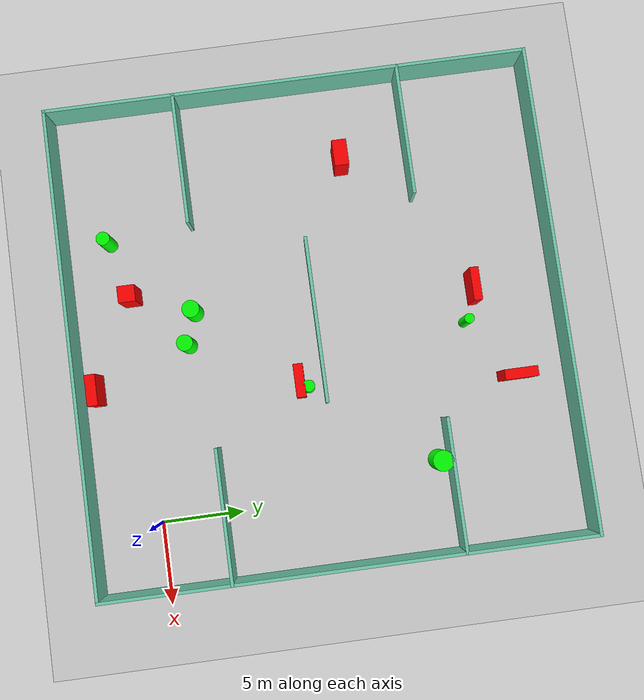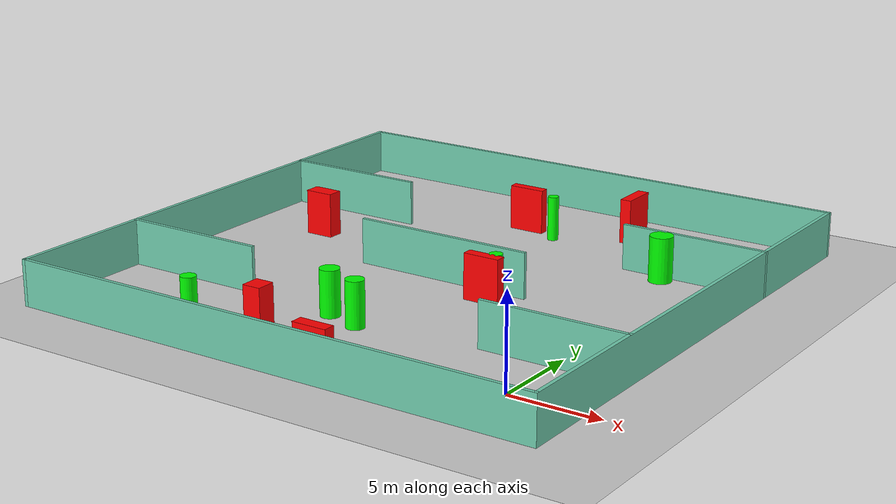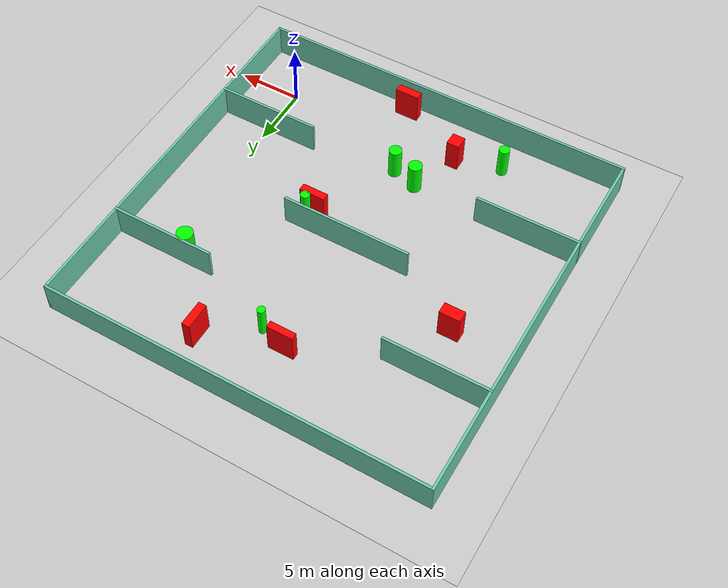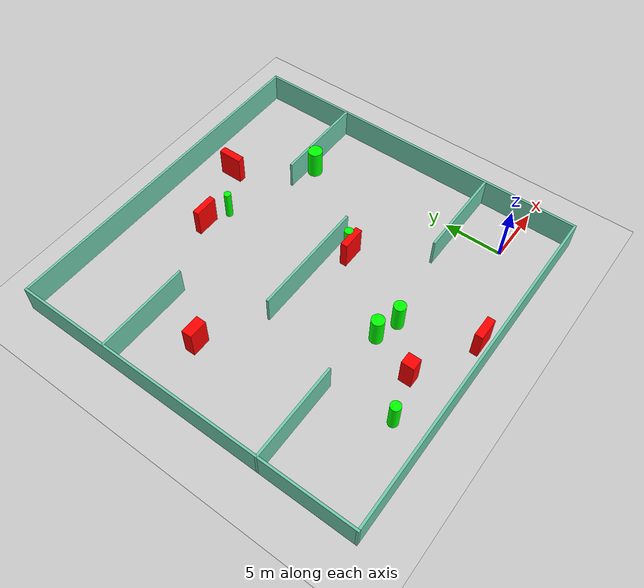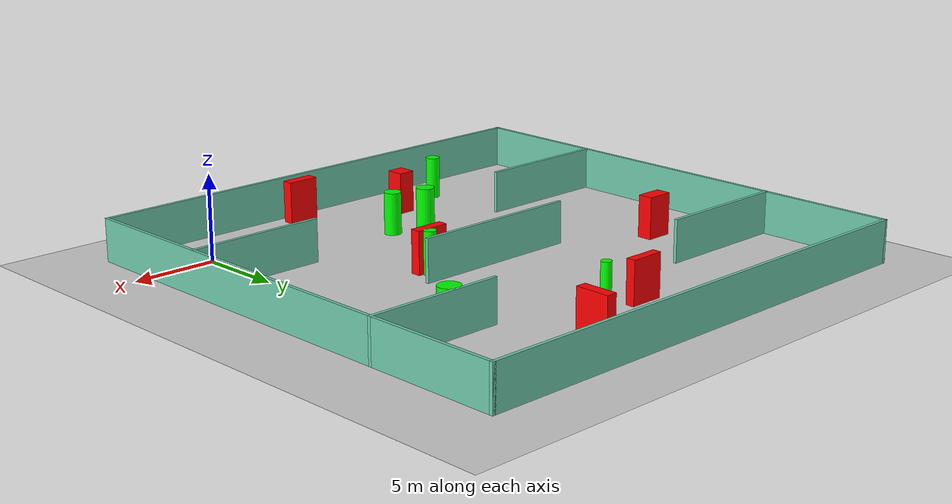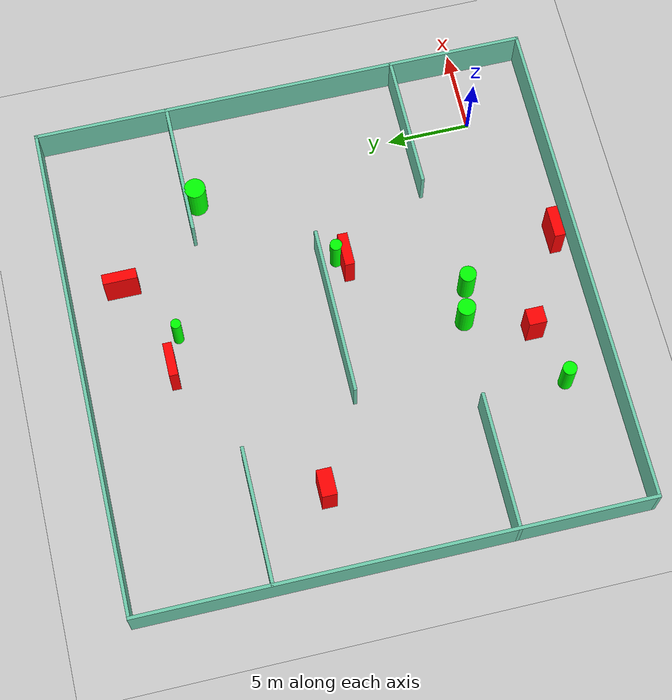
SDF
<sdf version="1.7">
 <world name="default">
  <light name="sun" type="directional">
   <pose>0 0 10 0 -0 0</pose>
   <diffuse>0.8 0.8 0.8 1</diffuse>
   <specular>0.2 0.2 0.2 1</specular>
   <attenuation>
    <range>1000</range>
    <constant>0.9</constant>
    <linear>0.01</linear>
    <quadratic>0.001</quadratic>
   </attenuation>
   <direction>-0.5 0.1 -0.9</direction>
   <spot><inner_angle>0</inner_angle><outer_angle>0</outer_angle><falloff>0</falloff></spot>
  </light>
  <model name="ground_plane">
   <static>1</static>
   <link name="link">
    <collision name="collision">
     <geometry><plane><normal>0 0 1</normal><size>100 100</size></plane></geometry>
     <surface>
      <contact><collide_bitmask>65535</collide_bitmask></contact>
      <friction><ode><mu>100</mu><mu2>50</mu2></ode></friction>
     </surface>
    </collision>
    <visual name="visual">
     <cast_shadows>0</cast_shadows>
     <geometry><plane><normal>0 0 1</normal><size>100 100</size></plane></geometry>
     <material>
      <script><uri>file://media/materials/scripts/gazebo.material</uri><name>Gazebo/Grey</name></script>
     </material>
    </visual>
   </link>
  </model>
  <gravity>0 0 -9.8</gravity>
  <magnetic_field>6e-06 2.3e-05 -4.2e-05</magnetic_field>
  <atmosphere type="adiabatic"/>
  <physics type="ode">
   <max_step_size>0.001</max_step_size>
   <real_time_factor>1</real_time_factor>
   <real_time_update_rate>1000</real_time_update_rate>
  </physics>
  <scene><ambient>0.4 0.4 0.4 1</ambient><background>0.7 0.7 0.7 1</background><shadows>1</shadows></scene>
  <spherical_coordinates>
   <surface_model>EARTH_WGS84</surface_model>
   <latitude_deg>0</latitude_deg>
   <longitude_deg>0</longitude_deg>
   <elevation>0</elevation>
   <heading_deg>0</heading_deg>
  </spherical_coordinates>
  <model name="my_base_walls">
   <link name="Wall_10">
    <collision name="Wall_10_Collision">
     <geometry><box><size>8.2 0.2 2.5</size></box></geometry>
     <pose>0 0 1.25 0 -0 0</pose>
    </collision>
    <visual name="Wall_10_Visual">
     <pose>0 0 1.25 0 -0 0</pose>
     <geometry><box><size>8.2 0.2 2.5</size></box></geometry>
     <material>
      <script><uri>file://media/materials/scripts/gazebo.material</uri><name>Gazebo/Grey</name></script>
      <ambient>0.435294 0.796078 0.67451 1</ambient>
     </material>
     <meta><layer>0</layer></meta>
    </visual>
    <pose>-11 -7 0 0 -0 0</pose>
   </link>
   <link name="Wall_12">
    <collision name="Wall_12_Collision">
     <geometry><box><size>8.2 0.2 2.5</size></box></geometry>
     <pose>0 0 1.25 0 -0 0</pose>
    </collision>
    <visual name="Wall_12_Visual">
     <pose>0 0 1.25 0 -0 0</pose>
     <geometry><box><size>8.2 0.2 2.5</size></box></geometry>
     <material>
      <script><uri>file://media/materials/scripts/gazebo.material</uri><name>Gazebo/Grey</name></script>
      <ambient>0.435294 0.796078 0.67451 1</ambient>
     </material>
     <meta><layer>0</layer></meta>
    </visual>
    <pose>-11 7 0 0 -0 0</pose>
   </link>
   <link name="Wall_14">
    <collision name="Wall_14_Collision">
     <geometry><box><size>8.2 0.2 2.5</size></box></geometry>
     <pose>0 0 1.25 0 -0 0</pose>
    </collision>
    <visual name="Wall_14_Visual">
     <pose>0 0 1.25 0 -0 0</pose>
     <geometry><box><size>8.2 0.2 2.5</size></box></geometry>
     <material>
      <script><uri>file://media/materials/scripts/gazebo.material</uri><name>Gazebo/Grey</name></script>
      <ambient>0.435294 0.796078 0.67451 1</ambient>
     </material>
     <meta><layer>0</layer></meta>
    </visual>
    <pose>11 7 0 0 -0 3.14159</pose>
   </link>
   <link name="Wall_16">
    <collision name="Wall_16_Collision">
     <geometry><box><size>10.2 0.2 2.5</size></box></geometry>
     <pose>0 0 1.25 0 -0 0</pose>
    </collision>
    <visual name="Wall_16_Visual">
     <pose>0 0 1.25 0 -0 0</pose>
     <geometry><box><size>10.2 0.2 2.5</size></box></geometry>
     <material>
      <script><uri>file://media/materials/scripts/gazebo.material</uri><name>Gazebo/Grey</name></script>
      <ambient>0.435294 0.796078 0.67451 1</ambient>
     </material>
     <meta><layer>0</layer></meta>
    </visual>
    <pose>0 0 0 0 -0 3.14159</pose>
   </link>
   <link name="Wall_2">
    <collision name="Wall_2_Collision">
     <geometry><box><size>30.2 0.2 2.5</size></box></geometry>
     <pose>0 0 1.25 0 -0 0</pose>
    </collision>
    <visual name="Wall_2_Visual">
     <pose>0 0 1.25 0 -0 0</pose>
     <geometry><box><size>30.2 0.2 2.5</size></box></geometry>
     <material>
      <script><uri>file://media/materials/scripts/gazebo.material</uri><name>Gazebo/Grey</name></script>
      <ambient>0.435294 0.796078 0.67451 1</ambient>
     </material>
     <meta><layer>0</layer></meta>
    </visual>
    <pose>0 -15 0 0 -0 3.14159</pose>
   </link>
   <link name="Wall_3">
    <collision name="Wall_3_Collision">
     <geometry><box><size>30.2 0.2 2.5</size></box></geometry>
     <pose>0 0 1.25 0 -0 0</pose>
    </collision>
    <visual name="Wall_3_Visual">
     <pose>0 0 1.25 0 -0 0</pose>
     <geometry><box><size>30.2 0.2 2.5</size></box></geometry>
     <material>
      <script><uri>file://media/materials/scripts/gazebo.material</uri><name>Gazebo/Grey</name></script>
      <ambient>0.435294 0.796078 0.67451 1</ambient>
     </material>
     <meta><layer>0</layer></meta>
    </visual>
    <pose>-15 0 0 0 -0 1.5708</pose>
   </link>
   <link name="Wall_4">
    <collision name="Wall_4_Collision">
     <geometry><box><size>30.2 0.2 2.5</size></box></geometry>
     <pose>0 0 1.25 0 -0 0</pose>
    </collision>
    <visual name="Wall_4_Visual">
     <pose>0 0 1.25 0 -0 0</pose>
     <geometry><box><size>30.2 0.2 2.5</size></box></geometry>
     <material>
      <script><uri>file://media/materials/scripts/gazebo.material</uri><name>Gazebo/Grey</name></script>
      <ambient>0.435294 0.796078 0.67451 1</ambient>
     </material>
     <meta><layer>0</layer></meta>
    </visual>
    <pose>0 15 0 0 -0 0</pose>
   </link>
   <link name="Wall_6">
    <collision name="Wall_6_Collision">
     <geometry><box><size>30.2 0.2 2.5</size></box></geometry>
     <pose>0 0 1.25 0 -0 0</pose>
    </collision>
    <visual name="Wall_6_Visual">
     <pose>0 0 1.25 0 -0 0</pose>
     <geometry><box><size>30.2 0.2 2.5</size></box></geometry>
     <material>
      <script><uri>file://media/materials/scripts/gazebo.material</uri><name>Gazebo/Grey</name></script>
      <ambient>0.435294 0.796078 0.67451 1</ambient>
     </material>
     <meta><layer>0</layer></meta>
    </visual>
    <pose>15 0 0 0 -0 1.5708</pose>
   </link>
   <link name="Wall_8">
    <collision name="Wall_8_Collision">
     <geometry><box><size>8.2 0.2 2.5</size></box></geometry>
     <pose>0 0 1.25 0 -0 0</pose>
    </collision>
    <visual name="Wall_8_Visual">
     <pose>0 0 1.25 0 -0 0</pose>
     <geometry><box><size>8.2 0.2 2.5</size></box></geometry>
     <material>
      <script><uri>file://media/materials/scripts/gazebo.material</uri><name>Gazebo/Grey</name></script>
      <ambient>0.435294 0.796078 0.67451 1</ambient>
     </material>
     <meta><layer>0</layer></meta>
    </visual>
    <pose>11 -7 0 0 -0 3.14159</pose>
   </link>
   <static>1</static>
   <pose>-11 11 0 0 -0 0</pose>
  </model>
  <model name="cylinder1">
   <static>1</static>
   <link name="link">
    <inertial>
     <mass>1</mass>
     <inertia><ixx>0.5</ixx><ixy>0</ixy><ixz>0</ixz><iyy>0.5</iyy><iyz>0</iyz><izz>1</izz></inertia>
    </inertial>
    <collision name="collision">
     <geometry><cylinder><radius>0.5343109914587598</radius><length>2.5</length></cylinder></geometry>
    </collision>
    <visual name="visual">
     <geometry><cylinder><radius>0.5343109914587598</radius><length>2.5</length></cylinder></geometry>
     <material>
      <ambient>0 1 0 1</ambient>
      <diffuse>0 1 0 1</diffuse>
      <specular>0.1 0.1 0.1 1</specular>
      <emissive>0 0 0 0</emissive>
     </material>
    </visual>
   </link>
   <pose>-12.609252311248678 3.535556625982551 1.25 0 0 0</pose>
  </model>
  <model name="cylinder2">
   <static>1</static>
   <link name="link">
    <inertial>
     <mass>1</mass>
     <inertia><ixx>0.5</ixx><ixy>0</ixy><ixz>0</ixz><iyy>0.5</iyy><iyz>0</iyz><izz>1</izz></inertia>
    </inertial>
    <collision name="collision">
     <geometry><cylinder><radius>0.4187109910850981</radius><length>2.5</length></cylinder></geometry>
    </collision>
    <visual name="visual">
     <geometry><cylinder><radius>0.4187109910850981</radius><length>2.5</length></cylinder></geometry>
     <material>
      <ambient>0 1 0 1</ambient>
      <diffuse>0 1 0 1</diffuse>
      <specular>0.1 0.1 0.1 1</specular>
      <emissive>0 0 0 0</emissive>
     </material>
    </visual>
   </link>
   <pose>-17.60323029818937 -1.2425187940395848 1.25 0 0 0</pose>
  </model>
  <model name="cylinder3">
   <static>1</static>
   <link name="link">
    <inertial>
     <mass>1</mass>
     <inertia><ixx>0.5</ixx><ixy>0</ixy><ixz>0</ixz><iyy>0.5</iyy><iyz>0</iyz><izz>1</izz></inertia>
    </inertial>
    <collision name="collision">
     <geometry><cylinder><radius>0.3634912796701186</radius><length>2.5</length></cylinder></geometry>
    </collision>
    <visual name="visual">
     <geometry><cylinder><radius>0.3634912796701186</radius><length>2.5</length></cylinder></geometry>
     <material>
      <ambient>0 1 0 1</ambient>
      <diffuse>0 1 0 1</diffuse>
      <specular>0.1 0.1 0.1 1</specular>
      <emissive>0 0 0 0</emissive>
     </material>
    </visual>
   </link>
   <pose>-7.0394944363432295 10.019304759757873 1.25 0 0 0</pose>
  </model>
  <model name="cylinder4">
   <static>1</static>
   <link name="link">
    <inertial>
     <mass>1</mass>
     <inertia><ixx>0.5</ixx><ixy>0</ixy><ixz>0</ixz><iyy>0.5</iyy><iyz>0</iyz><izz>1</izz></inertia>
    </inertial>
    <collision name="collision">
     <geometry><cylinder><radius>0.6349679491088678</radius><length>2.5</length></cylinder></geometry>
    </collision>
    <visual name="visual">
     <geometry><cylinder><radius>0.6349679491088678</radius><length>2.5</length></cylinder></geometry>
     <material>
      <ambient>0 1 0 1</ambient>
      <diffuse>0 1 0 1</diffuse>
      <specular>0.1 0.1 0.1 1</specular>
      <emissive>0 0 0 0</emissive>
     </material>
    </visual>
   </link>
   <pose>-1.5499291776114852 17.37466572517337 1.25 0 0 0</pose>
  </model>
  <model name="cylinder5">
   <static>1</static>
   <link name="link">
    <inertial>
     <mass>1</mass>
     <inertia><ixx>0.5</ixx><ixy>0</ixy><ixz>0</ixz><iyy>0.5</iyy><iyz>0</iyz><izz>1</izz></inertia>
    </inertial>
    <collision name="collision">
     <geometry><cylinder><radius>0.3017398750110889</radius><length>2.5</length></cylinder></geometry>
    </collision>
    <visual name="visual">
     <geometry><cylinder><radius>0.3017398750110889</radius><length>2.5</length></cylinder></geometry>
     <material>
      <ambient>0 1 0 1</ambient>
      <diffuse>0 1 0 1</diffuse>
      <specular>0.1 0.1 0.1 1</specular>
      <emissive>0 0 0 0</emissive>
     </material>
    </visual>
   </link>
   <pose>-9.795771769443508 20.17373203469196 1.25 0 0 0</pose>
  </model>
  <model name="cylinder6">
   <static>1</static>
   <link name="link">
    <inertial>
     <mass>1</mass>
     <inertia><ixx>0.5</ixx><ixy>0</ixy><ixz>0</ixz><iyy>0.5</iyy><iyz>0</iyz><izz>1</izz></inertia>
    </inertial>
    <collision name="collision">
     <geometry><cylinder><radius>0.49847488836963105</radius><length>2.5</length></cylinder></geometry>
    </collision>
    <visual name="visual">
     <geometry><cylinder><radius>0.49847488836963105</radius><length>2.5</length></cylinder></geometry>
     <material>
      <ambient>0 1 0 1</ambient>
      <diffuse>0 1 0 1</diffuse>
      <specular>0.1 0.1 0.1 1</specular>
      <emissive>0 0 0 0</emissive>
     </material>
    </visual>
   </link>
   <pose>-10.608438766562147 2.9343718203512132 1.25 0 0 0</pose>
  </model>
  <model name="box1">
   <static>1</static>
   <link name="link">
    <inertial>
     <mass>1</mass>
     <inertia><ixx>0.083</ixx><ixy>0</ixy><ixz>0</ixz><iyy>0.083</iyy><iyz>0</iyz><izz>0.083</izz></inertia>
    </inertial>
    <collision name="collision">
     <geometry><box><size>1.0172454622242149 1.061321017105036 2.5</size></box></geometry>
    </collision>
    <visual name="visual">
     <geometry><box><size>1.0172454622242149 1.061321017105036 2.5</size></box></geometry>
     <material>
      <ambient>1 0 0 1</ambient>
      <diffuse>1 0 0 1</diffuse>
      <specular>0.1 0.1 0.1 1</specular>
      <emissive>0 0 0 0</emissive>
     </material>
    </visual>
    <sensor name="my_contact" type="contact">
     <contact><collision>box_collision</collision><topic>__default_topic__</topic></contact>
    </sensor>
   </link>
   <pose>-14.050621042134672 -0.22031604036559216 1.25 0 0 0</pose>
  </model>
  <model name="box2">
   <static>1</static>
   <link name="link">
    <inertial>
     <mass>1</mass>
     <inertia><ixx>0.083</ixx><ixy>0</ixy><ixz>0</ixz><iyy>0.083</iyy><iyz>0</iyz><izz>0.083</izz></inertia>
    </inertial>
    <collision name="collision">
     <geometry><box><size>1.6110477901320728 0.8944912164876317 2.5</size></box></geometry>
    </collision>
    <visual name="visual">
     <geometry><box><size>1.6110477901320728 0.8944912164876317 2.5</size></box></geometry>
     <material>
      <ambient>1 0 0 1</ambient>
      <diffuse>1 0 0 1</diffuse>
      <specular>0.1 0.1 0.1 1</specular>
      <emissive>0 0 0 0</emissive>
     </material>
    </visual>
    <sensor name="my_contact" type="contact">
     <contact><collision>box_collision</collision><topic>__default_topic__</topic></contact>
    </sensor>
   </link>
   <pose>-21.014599806264343 13.831221768698065 1.25 0 0 0</pose>
  </model>
  <model name="box3">
   <static>1</static>
   <link name="link">
    <inertial>
     <mass>1</mass>
     <inertia><ixx>0.083</ixx><ixy>0</ixy><ixz>0</ixz><iyy>0.083</iyy><iyz>0</iyz><izz>0.083</izz></inertia>
    </inertial>
    <collision name="collision">
     <geometry><box><size>2.0434100818651366 0.5297071888519762 2.5</size></box></geometry>
    </collision>
    <visual name="visual">
     <geometry><box><size>2.0434100818651366 0.5297071888519762 2.5</size></box></geometry>
     <material>
      <ambient>1 0 0 1</ambient>
      <diffuse>1 0 0 1</diffuse>
      <specular>0.1 0.1 0.1 1</specular>
      <emissive>0 0 0 0</emissive>
     </material>
    </visual>
    <sensor name="my_contact" type="contact">
     <contact><collision>box_collision</collision><topic>__default_topic__</topic></contact>
    </sensor>
   </link>
   <pose>-11.850362277591493 20.896906685270586 1.25 0 0 0</pose>
  </model>
  <model name="box4">
   <static>1</static>
   <link name="link">
    <inertial>
     <mass>1</mass>
     <inertia><ixx>0.083</ixx><ixy>0</ixy><ixz>0</ixz><iyy>0.083</iyy><iyz>0</iyz><izz>0.083</izz></inertia>
    </inertial>
    <collision name="collision">
     <geometry><box><size>1.9032243584161352 0.6559371086898571 2.5</size></box></geometry>
    </collision>
    <visual name="visual">
     <geometry><box><size>1.9032243584161352 0.6559371086898571 2.5</size></box></geometry>
     <material>
      <ambient>1 0 0 1</ambient>
      <diffuse>1 0 0 1</diffuse>
      <specular>0.1 0.1 0.1 1</specular>
      <emissive>0 0 0 0</emissive>
     </material>
    </visual>
    <sensor name="my_contact" type="contact">
     <contact><collision>box_collision</collision><topic>__default_topic__</topic></contact>
    </sensor>
   </link>
   <pose>-8.524260820401114 -2.981879156694829 1.25 0 0 0</pose>
  </model>
  <model name="box5">
   <static>1</static>
   <link name="link">
    <inertial>
     <mass>1</mass>
     <inertia><ixx>0.083</ixx><ixy>0</ixy><ixz>0</ixz><iyy>0.083</iyy><iyz>0</iyz><izz>0.083</izz></inertia>
    </inertial>
    <collision name="collision">
     <geometry><box><size>2.0360635154008735 0.5862419249426435 2.5</size></box></geometry>
    </collision>
    <visual name="visual">
     <geometry><box><size>2.0360635154008735 0.5862419249426435 2.5</size></box></geometry>
     <material>
      <ambient>1 0 0 1</ambient>
      <diffuse>1 0 0 1</diffuse>
      <specular>0.1 0.1 0.1 1</specular>
      <emissive>0 0 0 0</emissive>
     </material>
    </visual>
    <sensor name="my_contact" type="contact">
     <contact><collision>box_collision</collision><topic>__default_topic__</topic></contact>
    </sensor>
   </link>
   <pose>-7.4433711851824285 9.504517976642656 1.25 0 0 0</pose>
  </model>
  <model name="box6">
   <static>1</static>
   <link name="link">
    <inertial>
     <mass>1</mass>
     <inertia><ixx>0.083</ixx><ixy>0</ixy><ixz>0</ixz><iyy>0.083</iyy><iyz>0</iyz><izz>0.083</izz></inertia>
    </inertial>
    <collision name="collision">
     <geometry><box><size>0.627115440453639 2.036544668829028 2.5</size></box></geometry>
    </collision>
    <visual name="visual">
     <geometry><box><size>0.627115440453639 2.036544668829028 2.5</size></box></geometry>
     <material>
      <ambient>1 0 0 1</ambient>
      <diffuse>1 0 0 1</diffuse>
      <specular>0.1 0.1 0.1 1</specular>
      <emissive>0 0 0 0</emissive>
     </material>
    </visual>
    <sensor name="my_contact" type="contact">
     <contact><collision>box_collision</collision><topic>__default_topic__</topic></contact>
    </sensor>
   </link>
   <pose>-6.125290051439917 22.798559577375652 1.25 0 0 0</pose>
  </model>
 </world>
</sdf>
